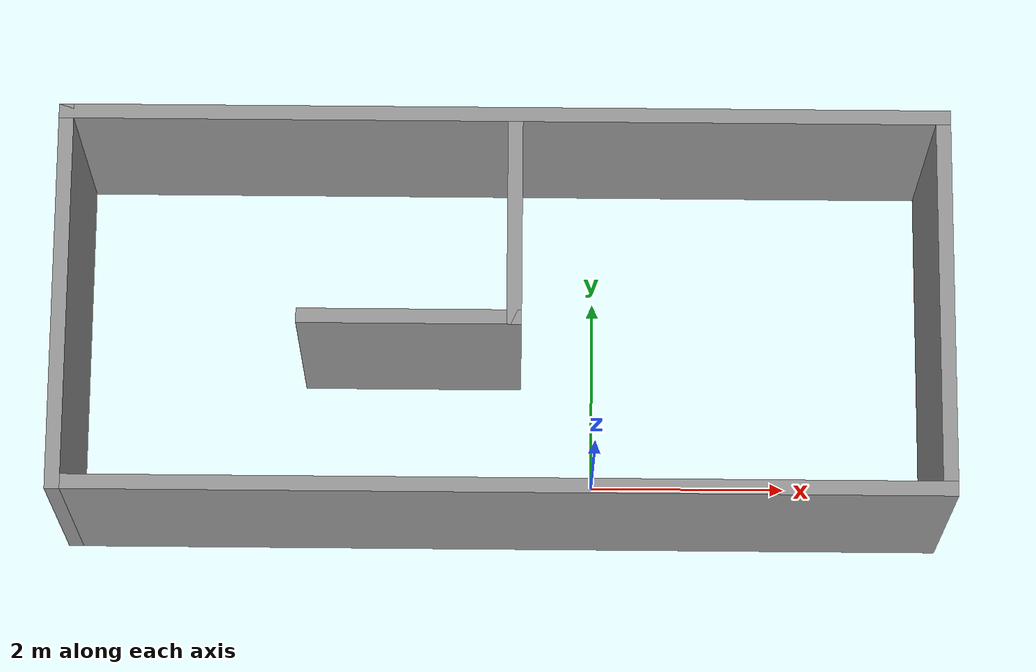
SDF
<?xml version='1.0'?>
<sdf version='1.7'>
  <model name='tp_ros_model'>
    <pose>-0.935045 1.34603 0 0 -0 0</pose>
    <link name='Wall_0'>
      <collision name='Wall_0_Collision'>
        <geometry>
          <box>
            <size>9 0.15 2.5</size>
          </box>
        </geometry>
        <pose>0 0 1.25 0 -0 0</pose>
      </collision>
      <visual name='Wall_0_Visual'>
        <pose>0 0 1.25 0 -0 0</pose>
        <geometry>
          <box>
            <size>9 0.15 2.5</size>
          </box>
        </geometry>
        <material>
          <script>
            <uri>file://media/materials/scripts/gazebo.material</uri>
            <name>Gazebo/Grey</name>
          </script>
          <ambient>1 1 1 1</ambient>
        </material>
        <meta>
          <layer>0</layer>
        </meta>
      </visual>
      <pose>-0 1.925 0 0 -0 0</pose>
    </link>
    <link name='Wall_4'>
      <collision name='Wall_4_Collision'>
        <geometry>
          <box>
            <size>4 0.15 2.5</size>
          </box>
        </geometry>
        <pose>0 0 1.25 0 -0 0</pose>
      </collision>
      <visual name='Wall_4_Visual'>
        <pose>0 0 1.25 0 -0 0</pose>
        <geometry>
          <box>
            <size>4 0.15 2.5</size>
          </box>
        </geometry>
        <material>
          <script>
            <uri>file://media/materials/scripts/gazebo.material</uri>
            <name>Gazebo/Grey</name>
          </script>
          <ambient>1 1 1 1</ambient>
        </material>
        <meta>
          <layer>0</layer>
        </meta>
      </visual>
      <pose>4.425 -0 0 0 -0 -1.5708</pose>
    </link>
    <link name='Wall_5'>
      <collision name='Wall_5_Collision'>
        <geometry>
          <box>
            <size>9 0.15 2.5</size>
          </box>
        </geometry>
        <pose>0 0 1.25 0 -0 0</pose>
      </collision>
      <visual name='Wall_5_Visual'>
        <pose>0 0 1.25 0 -0 0</pose>
        <geometry>
          <box>
            <size>9 0.15 2.5</size>
          </box>
        </geometry>
        <material>
          <script>
            <uri>file://media/materials/scripts/gazebo.material</uri>
            <name>Gazebo/Grey</name>
          </script>
          <ambient>1 1 1 1</ambient>
        </material>
        <meta>
          <layer>0</layer>
        </meta>
      </visual>
      <pose>-0 -1.925 0 0 -0 3.14159</pose>
    </link>
    <link name='Wall_6'>
      <collision name='Wall_6_Collision'>
        <geometry>
          <box>
            <size>4 0.15 2.5</size>
          </box>
        </geometry>
        <pose>0 0 1.25 0 -0 0</pose>
      </collision>
      <visual name='Wall_6_Visual'>
        <pose>0 0 1.25 0 -0 0</pose>
        <geometry>
          <box>
            <size>4 0.15 2.5</size>
          </box>
        </geometry>
        <material>
          <script>
            <uri>file://media/materials/scripts/gazebo.material</uri>
            <name>Gazebo/Grey</name>
          </script>
          <ambient>1 1 1 1</ambient>
        </material>
        <meta>
          <layer>0</layer>
        </meta>
      </visual>
      <pose>-4.425 -0 0 0 -0 1.5708</pose>
    </link>
    <link name='Wall_8'>
      <collision name='Wall_8_Collision'>
        <geometry>
          <box>
            <size>2.25 0.15 2.5</size>
          </box>
        </geometry>
        <pose>0 0 1.25 0 -0 0</pose>
      </collision>
      <visual name='Wall_8_Visual'>
        <pose>0 0 1.25 0 -0 0</pose>
        <geometry>
          <box>
            <size>2.25 0.15 2.5</size>
          </box>
        </geometry>
        <material>
          <script>
            <uri>file://media/materials/scripts/gazebo.material</uri>
            <name>Gazebo/Grey</name>
          </script>
          <ambient>1 1 1 1</ambient>
        </material>
        <meta>
          <layer>0</layer>
        </meta>
      </visual>
      <pose>0.11111 0.845415 0 0 -0 -1.5708</pose>
    </link>
    <link name='Wall_9'>
      <collision name='Wall_9_Collision'>
        <geometry>
          <box>
            <size>2.25 0.15 2.5</size>
          </box>
        </geometry>
        <pose>0 0 1.25 0 -0 0</pose>
      </collision>
      <visual name='Wall_9_Visual'>
        <pose>0 0 1.25 0 -0 0</pose>
        <geometry>
          <box>
            <size>2.25 0.15 2.5</size>
          </box>
        </geometry>
        <material>
          <script>
            <uri>file://media/materials/scripts/gazebo.material</uri>
            <name>Gazebo/Grey</name>
          </script>
          <ambient>1 1 1 1</ambient>
        </material>
        <meta>
          <layer>0</layer>
        </meta>
      </visual>
      <pose>-0.93889 -0.204585 0 0 -0 3.14159</pose>
    </link>
    <static>1</static>
  </model>
</sdf>
